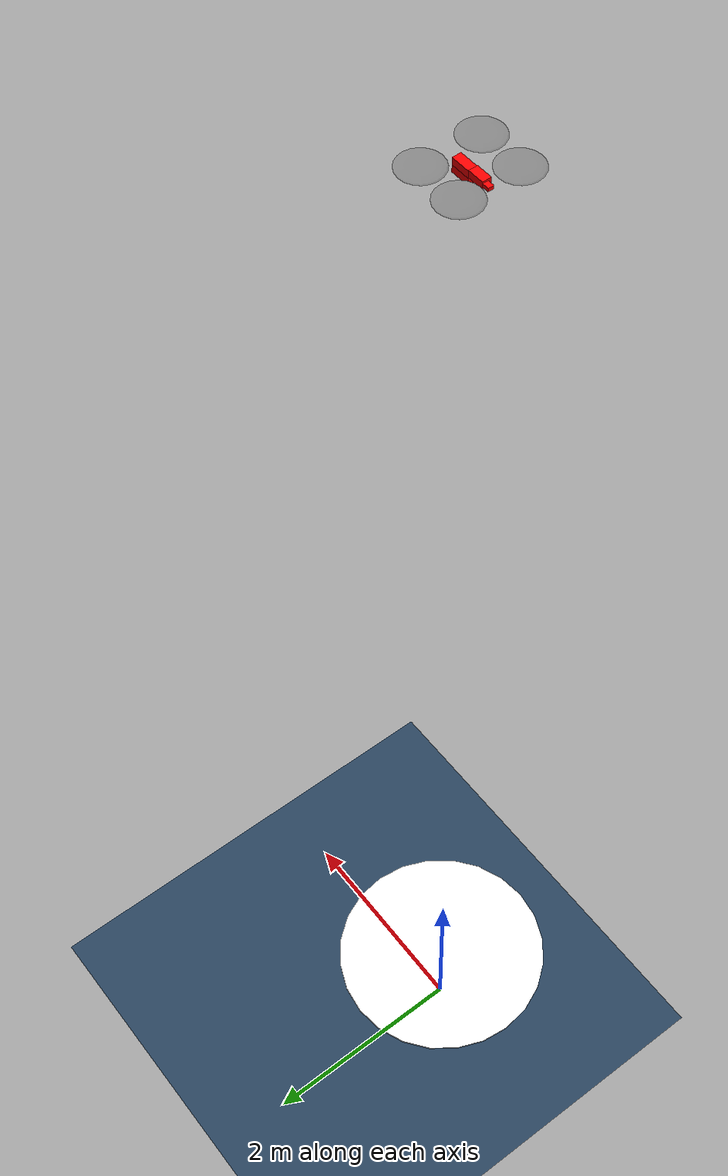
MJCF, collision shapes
<!-- core/LowLevel/Assets/skydio_X2/assets/scene.xml -->
<mujoco model="Skydio X2 scene">
  <compiler autolimits="true" assetdir="assets"/>

  <statistic center="0 0 0.1" extent="0.6" meansize=".05"/>

  <visual>
    <headlight diffuse="0.6 0.6 0.6" ambient="0.3 0.3 0.3" specular="0 0 0"/>
    <rgba haze="0.15 0.25 0.35 1"/>
    <global azimuth="-20" elevation="-20" ellipsoidinertia="true"/>
  </visual>

  <asset>
    <texture name="sky" type="skybox" builtin="gradient" rgb1="0.3 0.5 0.7" rgb2="0 0 0" width="1024" height="3000"/>
    <texture name="ground_texture" type="2d" builtin="checker" mark="edge" rgb1="0.2 0.3 0.4" rgb2="0.1 0.2 0.3"
             markrgb="0.8 0.8 0.8" width="300" height="300"/>
    <material name="ground_material" texture="ground_texture" texuniform="true" texrepeat="5 5" reflectance="0.2"/>
  </asset>

  <worldbody>
    <light pos="0 0 1.5" dir="0 0 -1" directional="true"/>
    <geom name="floor" size="0 0 0.05" type="plane" material="ground_material"/>
  </worldbody>

  <include file="Quadrotor.xml"/>
  <include file="Pad.xml"/>

</mujoco>

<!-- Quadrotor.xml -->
<!-- core/LowLevel/Assets/skydio_X2/assets/Quadrotor.xml -->
<mujoco model="Skydio X2">
  <compiler autolimits="true" assetdir="assets"/>

  <option timestep="0.005" integrator="implicit" density="1.225" viscosity="1.8e-5" wind="0 0 0"/>

  <default>
    <default class="x2">
      <geom mass="0"/>
      <motor ctrlrange="0 13"/>
      <mesh scale="0.01 0.01 0.01"/>
      <default class="visual">
        <geom group="2" type="mesh" contype="0" conaffinity="0"/>
      </default>
      <default class="collision">
        <geom group="3" type="box"/>
        <default class="rotor">
          <geom type="ellipsoid" size=".13 .13 .01"/>
        </default>
      </default>
      <site group="5"/>
    </default>
  </default>

  <asset>
    <texture type="2d" file="X2_lowpoly_texture_SpinningProps_1024.png"/>
    <material name="phong3SG" texture="X2_lowpoly_texture_SpinningProps_1024"/>
    <material name="invisible" rgba="0 0 0 0"/>
    <mesh class="x2" file="X2_lowpoly.obj"/>
  </asset>

  <worldbody>
    <light name="spotlight" mode="targetbodycom" target="Quadrotor" pos="0 -1 2"/>

    <body name="Quadrotor" pos="0 0 10" childclass="x2">
      <freejoint/>
      <camera name="track" pos="0 0 5" mode="trackcom"/>
      <camera name="bottom_cam" pos="0 0 -0.05" mode="trackcom"/>

      <geom material="phong3SG" mesh="X2_lowpoly" class="visual" quat="0 0 1 1"/>

      <geom class="collision" size=".06 .027 .02" pos=".04 0 .02" friction="2.0 1.0 0.05" margin="0.01"
            solref="0.002 1.0" solimp="0.90 0.95 0.002" rgba="1 0 0 0.5"/>
      <geom class="collision" size=".06 .027 .02" pos=".04 0 .06" friction="2.0 1.0 0.05" margin="0.01"
            solref="0.002 1.0" solimp="0.90 0.95 0.002" rgba="1 0 0 0.5"/>
      <geom class="collision" size=".05 .027 .02" pos="-.07 0 .065" friction="2.0 1.0 0.05" margin="0.01"
            solref="0.002 1.0" solimp="0.90 0.95 0.002" rgba="1 0 0 0.5"/>
      <geom class="collision" size=".023 .017 .01" pos="-.137 .008 .065" friction="2.0 1.0 0.05" margin="0.01"
            solref="0.002 1.0" solimp="0.90 0.95 0.002" rgba="1 0 0 0.5"/>

      <geom name="rotor1" class="rotor" pos="-.14 -.18 .08" mass=".25"/>
      <geom name="rotor2" class="rotor" pos="-.14 .18 .08" mass=".25"/>
      <geom name="rotor3" class="rotor" pos=".14 .18 .08" mass=".25"/>
      <geom name="rotor4" class="rotor" pos=".14 -.18 .08" mass=".25"/>
      <geom size=".16 .04 .02" pos="0 0 0.02" type="ellipsoid" mass=".325" class="visual" material="invisible"/>

      <site name="thrust1" pos="-.14 -.18 .08"/>
      <site name="thrust2" pos="-.14 .18 .08"/>
      <site name="thrust3" pos=".14 .18 .08"/>
      <site name="thrust4" pos=".14 -.18 .08"/>

      <site name="Quadrotor_site_gps" pos="0 0 0.03" size="0.002"/>
      <site name="Quadrotor_site_imu" pos="0 0 0.02"/>
      <site name="Quadrotor_site_rangefinder" pos="0 0 0" quat="0 1 0 0" size="0.002" rgba="1 1 1 0"/>
    </body>
  </worldbody>

  <actuator>
    <motor name="thrust1" site="thrust1" gear="0 0 1  1  1  1" ctrllimited="true" ctrlrange="0 4"/>
    <motor name="thrust2" site="thrust2" gear="0 0 1 -1  1 -1" ctrllimited="true" ctrlrange="0 4"/>
    <motor name="thrust3" site="thrust3" gear="0 0 1 -1 -1  1" ctrllimited="true" ctrlrange="0 4"/>
    <motor name="thrust4" site="thrust4" gear="0 0 1  1 -1 -1" ctrllimited="true" ctrlrange="0 4"/>
  </actuator>

  <sensor>
    <framepos name="Quadrotor_framepos" objtype="site" objname="Quadrotor_site_gps"/>
    <velocimeter name="Quadrotor_velocimeter" site="Quadrotor_site_gps"/>
  </sensor>

  <sensor>
    <framequat name="Quadrotor_framequat" objtype="site" objname="Quadrotor_site_imu"/>
    <gyro name="Quadrotor_gyro" site="Quadrotor_site_imu"/>
    <accelerometer name="Quadrotor_accelerometer" site="Quadrotor_site_imu"/>
  </sensor>

  <sensor>
    <rangefinder name="Quadrotor_rangefinder" site="Quadrotor_site_rangefinder"/>
  </sensor>

</mujoco>

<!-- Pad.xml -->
<!-- core/LowLevel/Assets/skydio_X2/assets/Pad.xml -->
<mujoco model="Skydio X2">

  <asset>
    <texture name="donut_tex" type="2d" file="donut_with_marker.png"/>
    <material name="donut_material" texture="donut_tex" texrepeat="1 1" texuniform="true"/>
  </asset>

  <worldbody>
    <body name="Pad" pos="0 0 1">
      <joint name="Pad_joint_x" type="slide" axis="1 0 0" damping="5"/>
      <joint name="Pad_joint_y" type="slide" axis="0 1 0" damping="5"/>

      <geom name="donut_platform" type="cylinder" size="1.0 0.01"
            friction="3.0 2.0 0.1"
            margin="0.01"
            condim="6"
            solref="0.002 1.0"
            solimp="0.90 0.95 0.002"
            material="donut_material" rgba="1 1 1 1"/>

      <site name="Pad_site_gps" pos="0 0 0.03" size="0.002"/>
      <site name="Pad_site_touch" pos="0 0 0.011" size="0.005"/>
    </body>
  </worldbody>

  <sensor>
    <framepos name="Pad_framepos" objtype="site" objname="Pad_site_gps"/>
    <velocimeter name="Pad_velocimeter" site="Pad_site_gps"/>
  </sensor>

  <sensor>
    <touch name="Pad_touch" site="Pad_site_touch"/>
  </sensor>

</mujoco>
